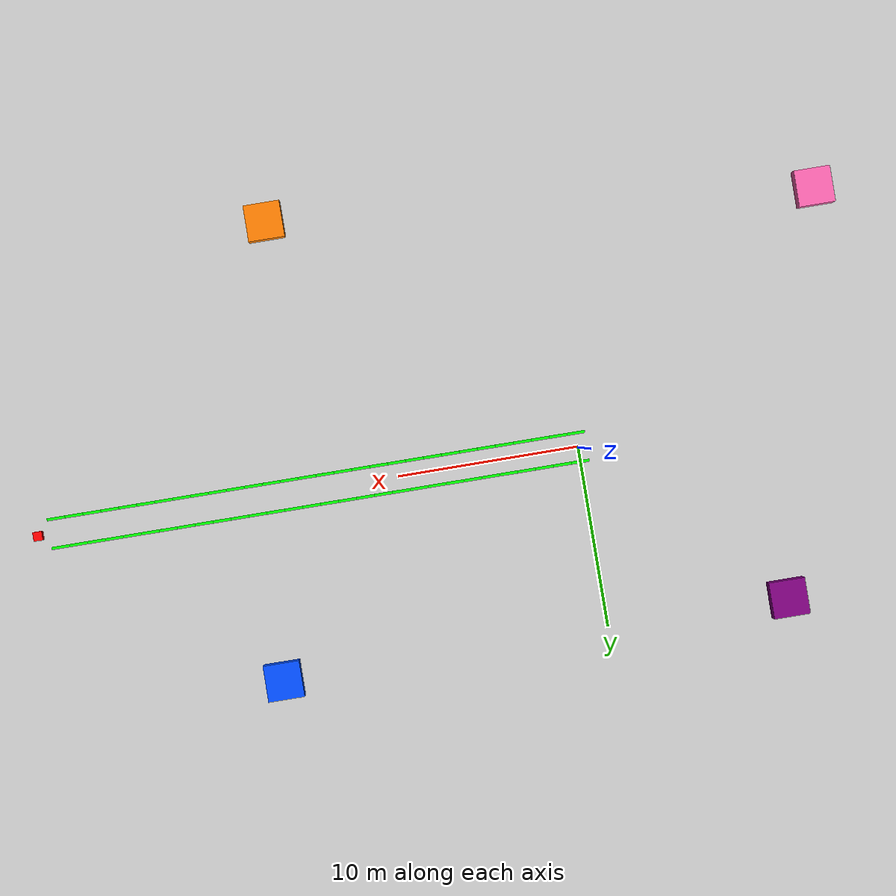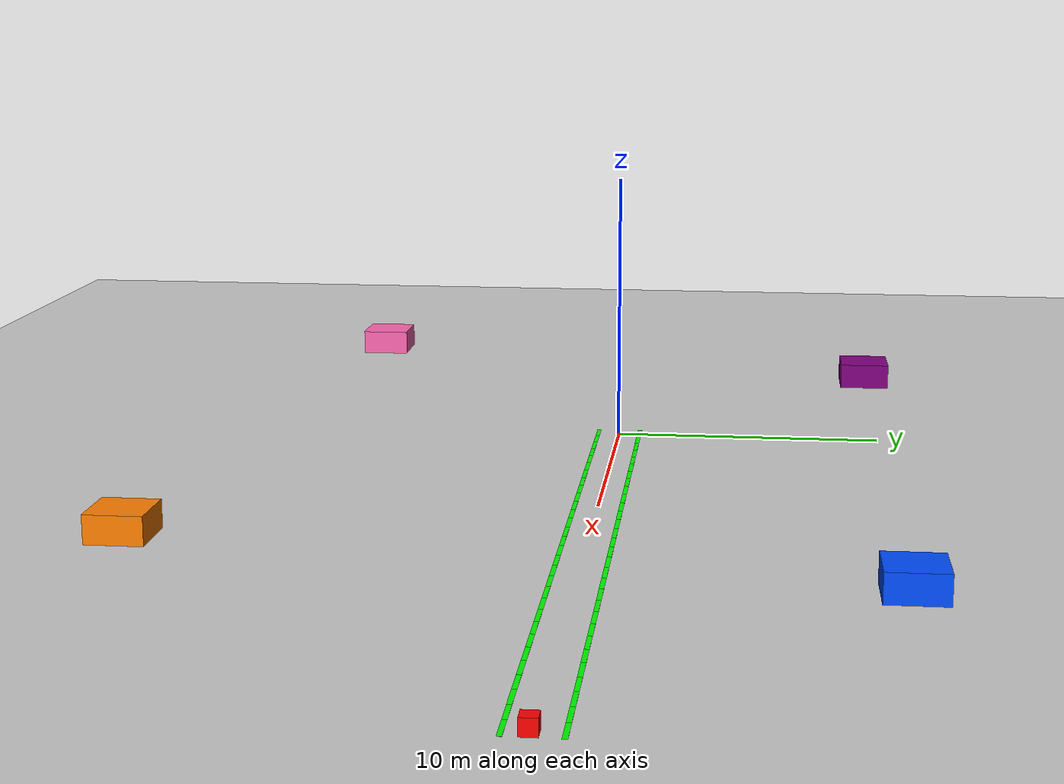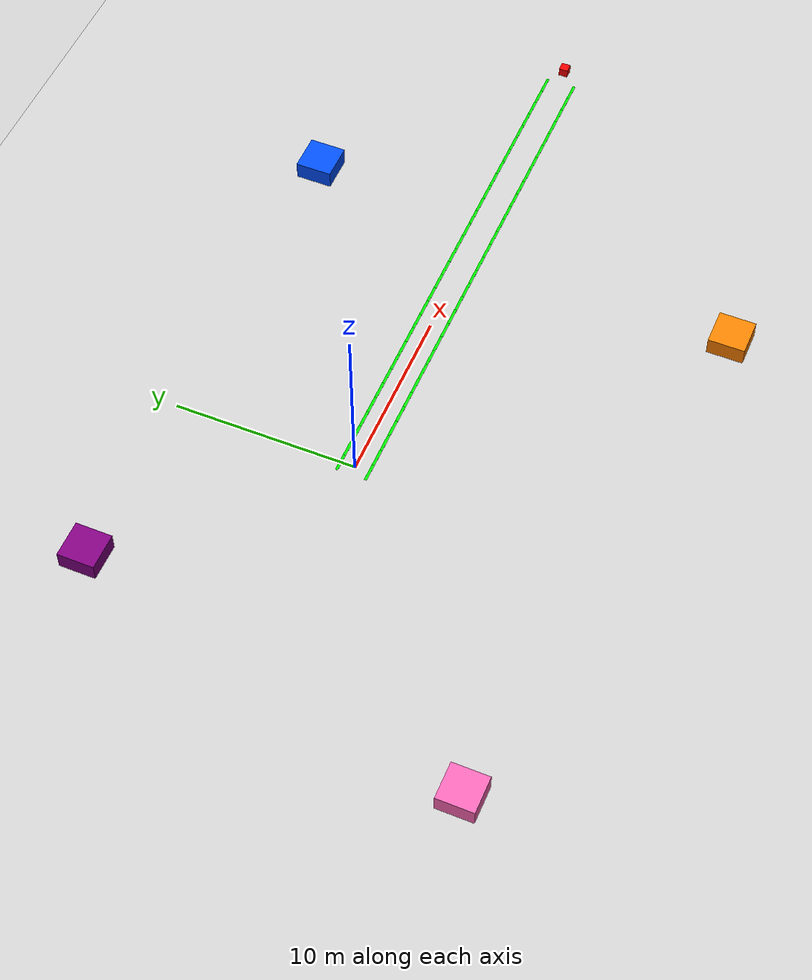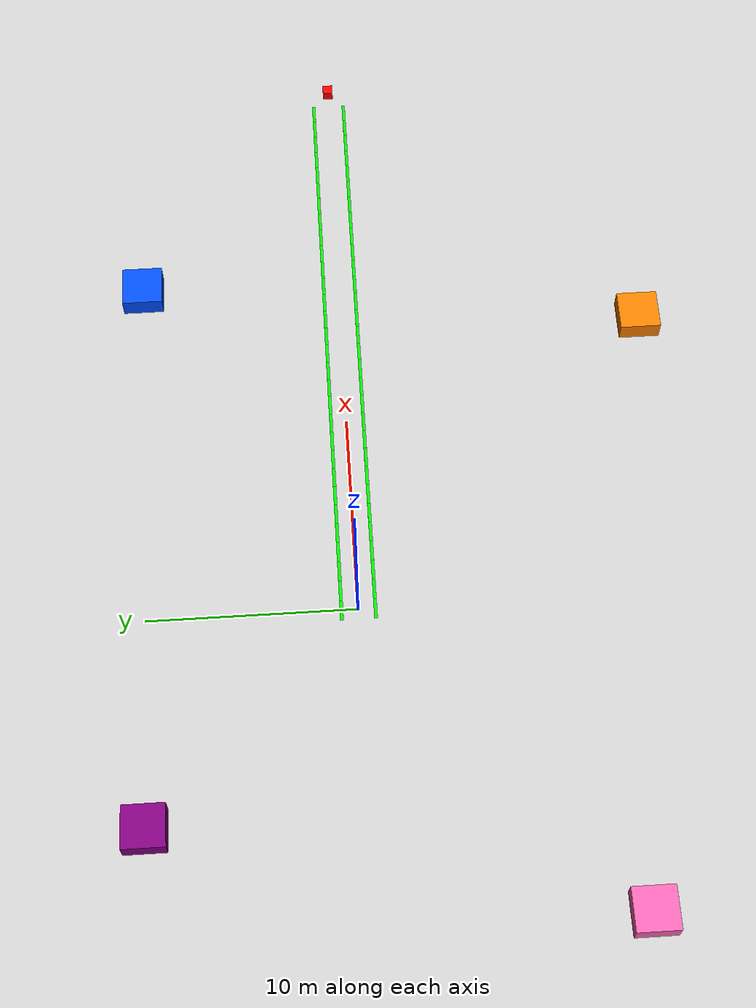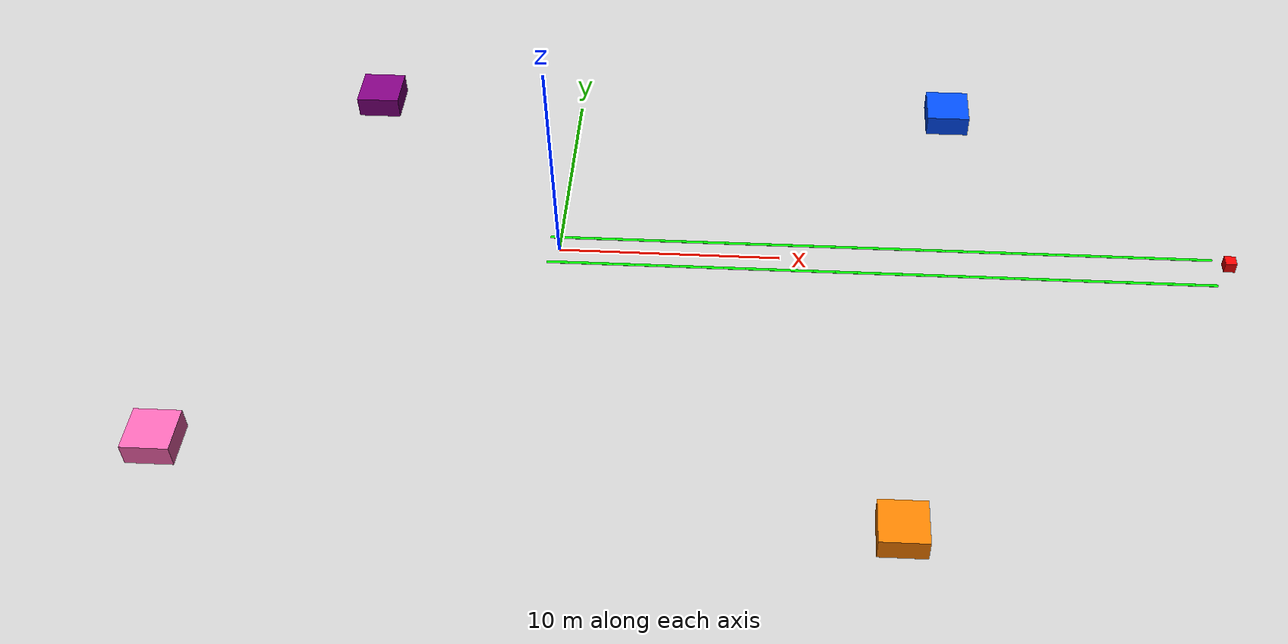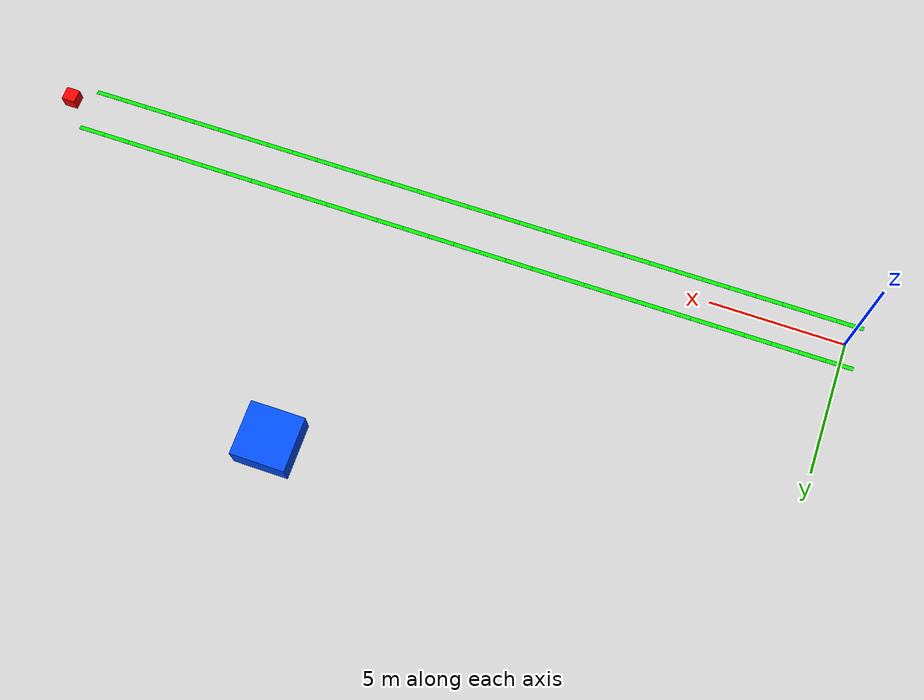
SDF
<?xml version="1.0" ?>
<sdf version="1.6">
  <world name="long_straight_lane_world">
    <include>
      <uri>model://sun</uri>
    </include>
    <include>
      <uri>model://ground_plane</uri>
    </include>

      <model name="lane_seg_00_left">
      <static>true</static>
      <pose>0.00 -0.8 0.02 0 0 0</pose>
      <link name="link">
        <visual name="visual">
          <geometry><box><size>1.0 0.15 0.01</size></box></geometry>
          <material><ambient>0 1 0 1</ambient><diffuse>0 1 0 1</diffuse></material>
        </visual>
      </link>
    </model>

    <model name="lane_seg_00_right">
      <static>true</static>
      <pose>0.00 0.8 0.02 0 0 0</pose>
      <link name="link">
        <visual name="visual">
          <geometry><box><size>1.0 0.15 0.01</size></box></geometry>
          <material><ambient>0 1 0 1</ambient><diffuse>0 1 0 1</diffuse></material>
        </visual>
      </link>
    </model>

    <model name="lane_seg_01_left">
      <static>true</static>
      <pose>1.00 -0.8 0.02 0 0 0</pose>
      <link name="link">
        <visual name="visual">
          <geometry><box><size>1.0 0.15 0.01</size></box></geometry>
          <material><ambient>0 1 0 1</ambient><diffuse>0 1 0 1</diffuse></material>
        </visual>
      </link>
    </model>
    <model name="lane_seg_01_right">
      <static>true</static>
      <pose>1.00 0.8 0.02 0 0 0</pose>
      <link name="link">
        <visual name="visual">
          <geometry><box><size>1.0 0.15 0.01</size></box></geometry>
          <material><ambient>0 1 0 1</ambient><diffuse>0 1 0 1</diffuse></material>
        </visual>
      </link>
    </model>

    <model name="lane_seg_02_left">
      <static>true</static>
      <pose>2.00 -0.8 0.02 0 0 0</pose>
      <link name="link">
        <visual name="visual">
          <geometry><box><size>1.0 0.15 0.01</size></box></geometry>
          <material><ambient>0 1 0 1</ambient><diffuse>0 1 0 1</diffuse></material>
        </visual>
      </link>
    </model>
    <model name="lane_seg_02_right">
      <static>true</static>
      <pose>2.00 0.8 0.02 0 0 0</pose>
      <link name="link">
        <visual name="visual">
          <geometry><box><size>1.0 0.15 0.01</size></box></geometry>
          <material><ambient>0 1 0 1</ambient><diffuse>0 1 0 1</diffuse></material>
        </visual>
      </link>
    </model>

    <model name="lane_seg_03_left">
      <static>true</static>
      <pose>3.00 -0.8 0.02 0 0 0</pose>
      <link name="link">
        <visual name="visual">
          <geometry><box><size>1.0 0.15 0.01</size></box></geometry>
          <material><ambient>0 1 0 1</ambient><diffuse>0 1 0 1</diffuse></material>
        </visual>
      </link>
    </model>
    <model name="lane_seg_03_right">
      <static>true</static>
      <pose>3.00 0.8 0.02 0 0 0</pose>
      <link name="link">
        <visual name="visual">
          <geometry><box><size>1.0 0.15 0.01</size></box></geometry>
          <material><ambient>0 1 0 1</ambient><diffuse>0 1 0 1</diffuse></material>
        </visual>
      </link>
    </model>

    <model name="lane_seg_04_left">
      <static>true</static>
      <pose>4.00 -0.8 0.02 0 0 0</pose>
      <link name="link">
        <visual name="visual">
          <geometry><box><size>1.0 0.15 0.01</size></box></geometry>
          <material><ambient>0 1 0 1</ambient><diffuse>0 1 0 1</diffuse></material>
        </visual>
      </link>
    </model>
    <model name="lane_seg_04_right">
      <static>true</static>
      <pose>4.00 0.8 0.02 0 0 0</pose>
      <link name="link">
        <visual name="visual">
          <geometry><box><size>1.0 0.15 0.01</size></box></geometry>
          <material><ambient>0 1 0 1</ambient><diffuse>0 1 0 1</diffuse></material>
        </visual>
      </link>
    </model>

    <model name="lane_seg_05_left">
      <static>true</static>
      <pose>5.00 -0.8 0.02 0 0 0</pose>
      <link name="link">
        <visual name="visual">
          <geometry><box><size>1.0 0.15 0.01</size></box></geometry>
          <material><ambient>0 1 0 1</ambient><diffuse>0 1 0 1</diffuse></material>
        </visual>
      </link>
    </model>
    <model name="lane_seg_05_right">
      <static>true</static>
      <pose>5.00 0.8 0.02 0 0 0</pose>
      <link name="link">
        <visual name="visual">
          <geometry><box><size>1.0 0.15 0.01</size></box></geometry>
          <material><ambient>0 1 0 1</ambient><diffuse>0 1 0 1</diffuse></material>
        </visual>
      </link>
    </model>

    <model name="lane_seg_06_left">
      <static>true</static>
      <pose>6.00 -0.8 0.02 0 0 0</pose>
      <link name="link">
        <visual name="visual">
          <geometry><box><size>1.0 0.15 0.01</size></box></geometry>
          <material><ambient>0 1 0 1</ambient><diffuse>0 1 0 1</diffuse></material>
        </visual>
      </link>
    </model>
    <model name="lane_seg_06_right">
      <static>true</static>
      <pose>6.00 0.8 0.02 0 0 0</pose>
      <link name="link">
        <visual name="visual">
          <geometry><box><size>1.0 0.15 0.01</size></box></geometry>
          <material><ambient>0 1 0 1</ambient><diffuse>0 1 0 1</diffuse></material>
        </visual>
      </link>
    </model>

    <model name="lane_seg_07_left">
      <static>true</static>
      <pose>7.00 -0.8 0.02 0 0 0</pose>
      <link name="link">
        <visual name="visual">
          <geometry><box><size>1.0 0.15 0.01</size></box></geometry>
          <material><ambient>0 1 0 1</ambient><diffuse>0 1 0 1</diffuse></material>
        </visual>
      </link>
    </model>
    <model name="lane_seg_07_right">
      <static>true</static>
      <pose>7.00 0.8 0.02 0 0 0</pose>
      <link name="link">
        <visual name="visual">
          <geometry><box><size>1.0 0.15 0.01</size></box></geometry>
          <material><ambient>0 1 0 1</ambient><diffuse>0 1 0 1</diffuse></material>
        </visual>
      </link>
    </model>

    <model name="lane_seg_08_left">
      <static>true</static>
      <pose>8.00 -0.8 0.02 0 0 0</pose>
      <link name="link">
        <visual name="visual">
          <geometry><box><size>1.0 0.15 0.01</size></box></geometry>
          <material><ambient>0 1 0 1</ambient><diffuse>0 1 0 1</diffuse></material>
        </visual>
      </link>
    </model>
    <model name="lane_seg_08_right">
      <static>true</static>
      <pose>8.00 0.8 0.02 0 0 0</pose>
      <link name="link">
        <visual name="visual">
          <geometry><box><size>1.0 0.15 0.01</size></box></geometry>
          <material><ambient>0 1 0 1</ambient><diffuse>0 1 0 1</diffuse></material>
        </visual>
      </link>
    </model>

    <model name="lane_seg_09_left">
      <static>true</static>
      <pose>9.00 -0.8 0.02 0 0 0</pose>
      <link name="link">
        <visual name="visual">
          <geometry><box><size>1.0 0.15 0.01</size></box></geometry>
          <material><ambient>0 1 0 1</ambient><diffuse>0 1 0 1</diffuse></material>
        </visual>
      </link>
    </model>
    <model name="lane_seg_09_right">
      <static>true</static>
      <pose>9.00 0.8 0.02 0 0 0</pose>
      <link name="link">
        <visual name="visual">
          <geometry><box><size>1.0 0.15 0.01</size></box></geometry>
          <material><ambient>0 1 0 1</ambient><diffuse>0 1 0 1</diffuse></material>
        </visual>
      </link>
    </model>

    <model name="lane_seg_10_left">
      <static>true</static>
      <pose>10.00 -0.8 0.02 0 0 0</pose>
      <link name="link">
        <visual name="visual">
          <geometry><box><size>1.0 0.15 0.01</size></box></geometry>
          <material><ambient>0 1 0 1</ambient><diffuse>0 1 0 1</diffuse></material>
        </visual>
      </link>
    </model>
    <model name="lane_seg_10_right">
      <static>true</static>
      <pose>10.00 0.8 0.02 0 0 0</pose>
      <link name="link">
        <visual name="visual">
          <geometry><box><size>1.0 0.15 0.01</size></box></geometry>
          <material><ambient>0 1 0 1</ambient><diffuse>0 1 0 1</diffuse></material>
        </visual>
      </link>
    </model>

    <model name="lane_seg_11_left">
      <static>true</static>
      <pose>11.00 -0.8 0.02 0 0 0</pose>
      <link name="link">
        <visual name="visual">
          <geometry><box><size>1.0 0.15 0.01</size></box></geometry>
          <material><ambient>0 1 0 1</ambient><diffuse>0 1 0 1</diffuse></material>
        </visual>
      </link>
    </model>
    <model name="lane_seg_11_right">
      <static>true</static>
      <pose>11.00 0.8 0.02 0 0 0</pose>
      <link name="link">
        <visual name="visual">
          <geometry><box><size>1.0 0.15 0.01</size></box></geometry>
          <material><ambient>0 1 0 1</ambient><diffuse>0 1 0 1</diffuse></material>
        </visual>
      </link>
    </model>

    <model name="lane_seg_12_left">
      <static>true</static>
      <pose>12.00 -0.8 0.02 0 0 0</pose>
      <link name="link">
        <visual name="visual">
          <geometry><box><size>1.0 0.15 0.01</size></box></geometry>
          <material><ambient>0 1 0 1</ambient><diffuse>0 1 0 1</diffuse></material>
        </visual>
      </link>
    </model>
    <model name="lane_seg_12_right">
      <static>true</static>
      <pose>12.00 0.8 0.02 0 0 0</pose>
      <link name="link">
        <visual name="visual">
          <geometry><box><size>1.0 0.15 0.01</size></box></geometry>
          <material><ambient>0 1 0 1</ambient><diffuse>0 1 0 1</diffuse></material>
        </visual>
      </link>
    </model>

    <model name="lane_seg_13_left">
      <static>true</static>
      <pose>13.00 -0.8 0.02 0 0 0</pose>
      <link name="link">
        <visual name="visual">
          <geometry><box><size>1.0 0.15 0.01</size></box></geometry>
          <material><ambient>0 1 0 1</ambient><diffuse>0 1 0 1</diffuse></material>
        </visual>
      </link>
    </model>
    <model name="lane_seg_13_right">
      <static>true</static>
      <pose>13.00 0.8 0.02 0 0 0</pose>
      <link name="link">
        <visual name="visual">
          <geometry><box><size>1.0 0.15 0.01</size></box></geometry>
          <material><ambient>0 1 0 1</ambient><diffuse>0 1 0 1</diffuse></material>
        </visual>
      </link>
    </model>

    <model name="lane_seg_14_left">
      <static>true</static>
      <pose>14.00 -0.8 0.02 0 0 0</pose>
      <link name="link">
        <visual name="visual">
          <geometry><box><size>1.0 0.15 0.01</size></box></geometry>
          <material><ambient>0 1 0 1</ambient><diffuse>0 1 0 1</diffuse></material>
        </visual>
      </link>
    </model>
    <model name="lane_seg_14_right">
      <static>true</static>
      <pose>14.00 0.8 0.02 0 0 0</pose>
      <link name="link">
        <visual name="visual">
          <geometry><box><size>1.0 0.15 0.01</size></box></geometry>
          <material><ambient>0 1 0 1</ambient><diffuse>0 1 0 1</diffuse></material>
        </visual>
      </link>
    </model>

    <model name="lane_seg_15_left">
      <static>true</static>
      <pose>15.00 -0.8 0.02 0 0 0</pose>
      <link name="link">
        <visual name="visual">
          <geometry><box><size>1.0 0.15 0.01</size></box></geometry>
          <material><ambient>0 1 0 1</ambient><diffuse>0 1 0 1</diffuse></material>
        </visual>
      </link>
    </model>
    <model name="lane_seg_15_right">
      <static>true</static>
      <pose>15.00 0.8 0.02 0 0 0</pose>
      <link name="link">
        <visual name="visual">
          <geometry><box><size>1.0 0.15 0.01</size></box></geometry>
          <material><ambient>0 1 0 1</ambient><diffuse>0 1 0 1</diffuse></material>
        </visual>
      </link>
    </model>

    <model name="lane_seg_16_left">
      <static>true</static>
      <pose>16.00 -0.8 0.02 0 0 0</pose>
      <link name="link">
        <visual name="visual">
          <geometry><box><size>1.0 0.15 0.01</size></box></geometry>
          <material><ambient>0 1 0 1</ambient><diffuse>0 1 0 1</diffuse></material>
        </visual>
      </link>
    </model>
    <model name="lane_seg_16_right">
      <static>true</static>
      <pose>16.00 0.8 0.02 0 0 0</pose>
      <link name="link">
        <visual name="visual">
          <geometry><box><size>1.0 0.15 0.01</size></box></geometry>
          <material><ambient>0 1 0 1</ambient><diffuse>0 1 0 1</diffuse></material>
        </visual>
      </link>
    </model>

    <model name="lane_seg_17_left">
      <static>true</static>
      <pose>17.00 -0.8 0.02 0 0 0</pose>
      <link name="link">
        <visual name="visual">
          <geometry><box><size>1.0 0.15 0.01</size></box></geometry>
          <material><ambient>0 1 0 1</ambient><diffuse>0 1 0 1</diffuse></material>
        </visual>
      </link>
    </model>
    <model name="lane_seg_17_right">
      <static>true</static>
      <pose>17.00 0.8 0.02 0 0 0</pose>
      <link name="link">
        <visual name="visual">
          <geometry><box><size>1.0 0.15 0.01</size></box></geometry>
          <material><ambient>0 1 0 1</ambient><diffuse>0 1 0 1</diffuse></material>
        </visual>
      </link>
    </model>

    <model name="lane_seg_18_left">
      <static>true</static>
      <pose>18.00 -0.8 0.02 0 0 0</pose>
      <link name="link">
        <visual name="visual">
          <geometry><box><size>1.0 0.15 0.01</size></box></geometry>
          <material><ambient>0 1 0 1</ambient><diffuse>0 1 0 1</diffuse></material>
        </visual>
      </link>
    </model>
    <model name="lane_seg_18_right">
      <static>true</static>
      <pose>18.00 0.8 0.02 0 0 0</pose>
      <link name="link">
        <visual name="visual">
          <geometry><box><size>1.0 0.15 0.01</size></box></geometry>
          <material><ambient>0 1 0 1</ambient><diffuse>0 1 0 1</diffuse></material>
        </visual>
      </link>
    </model>

    <model name="lane_seg_19_left">
      <static>true</static>
      <pose>19.00 -0.8 0.02 0 0 0</pose>
      <link name="link">
        <visual name="visual">
          <geometry><box><size>1.0 0.15 0.01</size></box></geometry>
          <material><ambient>0 1 0 1</ambient><diffuse>0 1 0 1</diffuse></material>
        </visual>
      </link>
    </model>
    <model name="lane_seg_19_right">
      <static>true</static>
      <pose>19.00 0.8 0.02 0 0 0</pose>
      <link name="link">
        <visual name="visual">
          <geometry><box><size>1.0 0.15 0.01</size></box></geometry>
          <material><ambient>0 1 0 1</ambient><diffuse>0 1 0 1</diffuse></material>
        </visual>
      </link>
    </model>

    <model name="lane_seg_20_left">
      <static>true</static>
      <pose>20.00 -0.8 0.02 0 0 0</pose>
      <link name="link">
        <visual name="visual">
          <geometry><box><size>1.0 0.15 0.01</size></box></geometry>
          <material><ambient>0 1 0 1</ambient><diffuse>0 1 0 1</diffuse></material>
        </visual>
      </link>
    </model>
    <model name="lane_seg_20_right">
      <static>true</static>
      <pose>20.00 0.8 0.02 0 0 0</pose>
      <link name="link">
        <visual name="visual">
          <geometry><box><size>1.0 0.15 0.01</size></box></geometry>
          <material><ambient>0 1 0 1</ambient><diffuse>0 1 0 1</diffuse></material>
        </visual>
      </link>
    </model>

    <model name="lane_seg_21_left">
      <static>true</static>
      <pose>21.00 -0.8 0.02 0 0 0</pose>
      <link name="link">
        <visual name="visual">
          <geometry><box><size>1.0 0.15 0.01</size></box></geometry>
          <material><ambient>0 1 0 1</ambient><diffuse>0 1 0 1</diffuse></material>
        </visual>
      </link>
    </model>
    <model name="lane_seg_21_right">
      <static>true</static>
      <pose>21.00 0.8 0.02 0 0 0</pose>
      <link name="link">
        <visual name="visual">
          <geometry><box><size>1.0 0.15 0.01</size></box></geometry>
          <material><ambient>0 1 0 1</ambient><diffuse>0 1 0 1</diffuse></material>
        </visual>
      </link>
    </model>

    <model name="lane_seg_22_left">
      <static>true</static>
      <pose>22.00 -0.8 0.02 0 0 0</pose>
      <link name="link">
        <visual name="visual">
          <geometry><box><size>1.0 0.15 0.01</size></box></geometry>
          <material><ambient>0 1 0 1</ambient><diffuse>0 1 0 1</diffuse></material>
        </visual>
      </link>
    </model>
    <model name="lane_seg_22_right">
      <static>true</static>
      <pose>22.00 0.8 0.02 0 0 0</pose>
      <link name="link">
        <visual name="visual">
          <geometry><box><size>1.0 0.15 0.01</size></box></geometry>
          <material><ambient>0 1 0 1</ambient><diffuse>0 1 0 1</diffuse></material>
        </visual>
      </link>
    </model>

    <model name="lane_seg_23_left">
      <static>true</static>
      <pose>23.00 -0.8 0.02 0 0 0</pose>
      <link name="link">
        <visual name="visual">
          <geometry><box><size>1.0 0.15 0.01</size></box></geometry>
          <material><ambient>0 1 0 1</ambient><diffuse>0 1 0 1</diffuse></material>
        </visual>
      </link>
    </model>
    <model name="lane_seg_23_right">
      <static>true</static>
      <pose>23.00 0.8 0.02 0 0 0</pose>
      <link name="link">
        <visual name="visual">
          <geometry><box><size>1.0 0.15 0.01</size></box></geometry>
          <material><ambient>0 1 0 1</ambient><diffuse>0 1 0 1</diffuse></material>
        </visual>
      </link>
    </model>

    <model name="lane_seg_24_left">
      <static>true</static>
      <pose>24.00 -0.8 0.02 0 0 0</pose>
      <link name="link">
        <visual name="visual">
          <geometry><box><size>1.0 0.15 0.01</size></box></geometry>
          <material><ambient>0 1 0 1</ambient><diffuse>0 1 0 1</diffuse></material>
        </visual>
      </link>
    </model>
    <model name="lane_seg_24_right">
      <static>true</static>
      <pose>24.00 0.8 0.02 0 0 0</pose>
      <link name="link">
        <visual name="visual">
          <geometry><box><size>1.0 0.15 0.01</size></box></geometry>
          <material><ambient>0 1 0 1</ambient><diffuse>0 1 0 1</diffuse></material>
        </visual>
      </link>
    </model>

    <model name="lane_seg_25_left">
      <static>true</static>
      <pose>25.00 -0.8 0.02 0 0 0</pose>
      <link name="link">
        <visual name="visual">
          <geometry><box><size>1.0 0.15 0.01</size></box></geometry>
          <material><ambient>0 1 0 1</ambient><diffuse>0 1 0 1</diffuse></material>
        </visual>
      </link>
    </model>
    <model name="lane_seg_25_right">
      <static>true</static>
      <pose>25.00 0.8 0.02 0 0 0</pose>
      <link name="link">
        <visual name="visual">
          <geometry><box><size>1.0 0.15 0.01</size></box></geometry>
          <material><ambient>0 1 0 1</ambient><diffuse>0 1 0 1</diffuse></material>
        </visual>
      </link>
    </model>

    <model name="lane_seg_26_left">
      <static>true</static>
      <pose>26.00 -0.8 0.02 0 0 0</pose>
      <link name="link">
        <visual name="visual">
          <geometry><box><size>1.0 0.15 0.01</size></box></geometry>
          <material><ambient>0 1 0 1</ambient><diffuse>0 1 0 1</diffuse></material>
        </visual>
      </link>
    </model>
    <model name="lane_seg_26_right">
      <static>true</static>
      <pose>26.00 0.8 0.02 0 0 0</pose>
      <link name="link">
        <visual name="visual">
          <geometry><box><size>1.0 0.15 0.01</size></box></geometry>
          <material><ambient>0 1 0 1</ambient><diffuse>0 1 0 1</diffuse></material>
        </visual>
      </link>
    </model>

    <model name="lane_seg_27_left">
      <static>true</static>
      <pose>27.00 -0.8 0.02 0 0 0</pose>
      <link name="link">
        <visual name="visual">
          <geometry><box><size>1.0 0.15 0.01</size></box></geometry>
          <material><ambient>0 1 0 1</ambient><diffuse>0 1 0 1</diffuse></material>
        </visual>
      </link>
    </model>
    <model name="lane_seg_27_right">
      <static>true</static>
      <pose>27.00 0.8 0.02 0 0 0</pose>
      <link name="link">
        <visual name="visual">
          <geometry><box><size>1.0 0.15 0.01</size></box></geometry>
          <material><ambient>0 1 0 1</ambient><diffuse>0 1 0 1</diffuse></material>
        </visual>
      </link>
    </model>

    <model name="lane_seg_28_left">
      <static>true</static>
      <pose>28.00 -0.8 0.02 0 0 0</pose>
      <link name="link">
        <visual name="visual">
          <geometry><box><size>1.0 0.15 0.01</size></box></geometry>
          <material><ambient>0 1 0 1</ambient><diffuse>0 1 0 1</diffuse></material>
        </visual>
      </link>
    </model>
    <model name="lane_seg_28_right">
      <static>true</static>
      <pose>28.00 0.8 0.02 0 0 0</pose>
      <link name="link">
        <visual name="visual">
          <geometry><box><size>1.0 0.15 0.01</size></box></geometry>
          <material><ambient>0 1 0 1</ambient><diffuse>0 1 0 1</diffuse></material>
        </visual>
      </link>
    </model>

    <model name="lane_seg_29_left">
      <static>true</static>
      <pose>29.00 -0.8 0.02 0 0 0</pose>
      <link name="link">
        <visual name="visual">
          <geometry><box><size>1.0 0.15 0.01</size></box></geometry>
          <material><ambient>0 1 0 1</ambient><diffuse>0 1 0 1</diffuse></material>
        </visual>
      </link>
    </model>
    <model name="lane_seg_29_right">
      <static>true</static>
      <pose>29.00 0.8 0.02 0 0 0</pose>
      <link name="link">
        <visual name="visual">
          <geometry><box><size>1.0 0.15 0.01</size></box></geometry>
          <material><ambient>0 1 0 1</ambient><diffuse>0 1 0 1</diffuse></material>
        </visual>
      </link>
    </model>

    <model name="destination_point">
      <static>true</static>
      <pose>30 0 0.5 0 0 0</pose>
      <link name="destination_link">
        <visual name="destination_visual">
          <pose>0 0 0.1 0 0 0</pose>
          <geometry>
            <box>
              <size>0.5 0.5 0.5</size>
            </box>
          </geometry>
          <material>
            <ambient>1 0 0 1</ambient>
            <diffuse>1 0 0 1</diffuse>
          </material>
        </visual>
      </link>
    </model>
<scene>
      <ambient>0.4 0.4 0.4 1</ambient>
      <background>0.7 0.8 1.0 1</background>
      <shadows>true</shadows>
    </scene>
    <sky>
      <clouds>
        <speed>12</speed>
        <direction>0</direction>
        <humidity>0.5</humidity>
        <mean_size>0.5</mean_size>
      </clouds>
      <time>14</time>
    </sky>

    <!-- building -->
 <model name="building_purple">
  <static>true</static>
  <pose>-10 10 0.5 0 0 0</pose>
  <link name="link">
    <collision name="collision">
      <geometry>
        <box><size>2 2 1</size></box>
      </geometry>
    </collision>
    <visual name="visual">
      <geometry>
        <box><size>2 2 1</size></box>
      </geometry>
      <material>
        <ambient>0.5 0.0 0.5 1</ambient>
        <diffuse>0.5 0.0 0.5 1</diffuse>
      </material>
    </visual>
  </link>
</model>

<model name="building_pink">
  <static>true</static>
  <pose>-15 -12 0.5 0 0 0</pose>
  <link name="link">
    <collision name="collision">
      <geometry>
        <box><size>2 2 1</size></box>
      </geometry>
    </collision>
    <visual name="visual">
      <geometry>
        <box><size>2 2 1</size></box>
      </geometry>
      <material>
        <ambient>1.0 0.4 0.7 1</ambient>
        <diffuse>1.0 0.4 0.7 1</diffuse>
      </material>
    </visual>
  </link>
</model>

<model name="building_orange">
  <static>true</static>
  <pose>15 -15 0.5 0 0 0</pose>
  <link name="link">
    <collision name="collision">
      <geometry>
        <box><size>2 2 1</size></box>
      </geometry>
    </collision>
    <visual name="visual">
      <geometry>
        <box><size>2 2 1</size></box>
      </geometry>
      <material>
        <ambient>1.0 0.5 0.0 1</ambient>
        <diffuse>1.0 0.5 0.0 1</diffuse>
      </material>
    </visual>
  </link>
</model>

<model name="building_blue">
  <static>true</static>
  <pose>18 10 0.5 0 0 0</pose>
  <link name="link">
    <collision name="collision">
      <geometry>
        <box><size>2 2 1</size></box>
      </geometry>
    </collision>
    <visual name="visual">
      <geometry>
        <box><size>2 2 1</size></box>
      </geometry>
      <material>
        <ambient>0.0 0.3 1.0 1</ambient>
        <diffuse>0.0 0.3 1.0 1</diffuse>
      </material>
    </visual>
  </link>
</model>
  </world>
</sdf>
